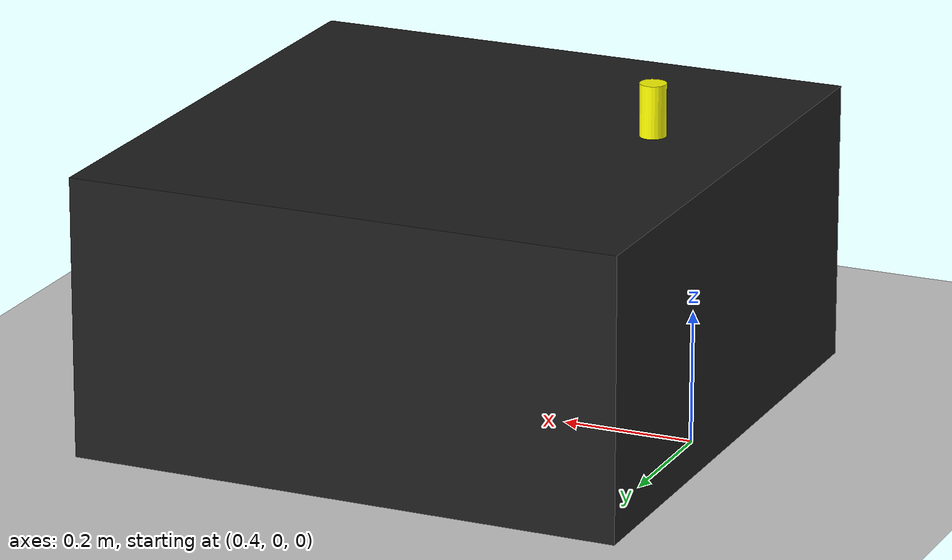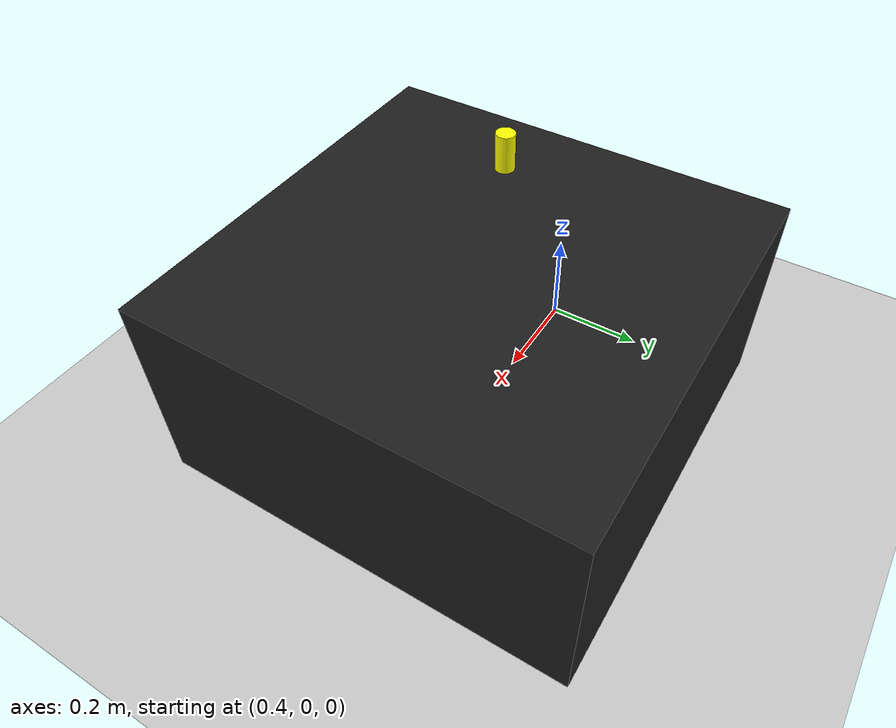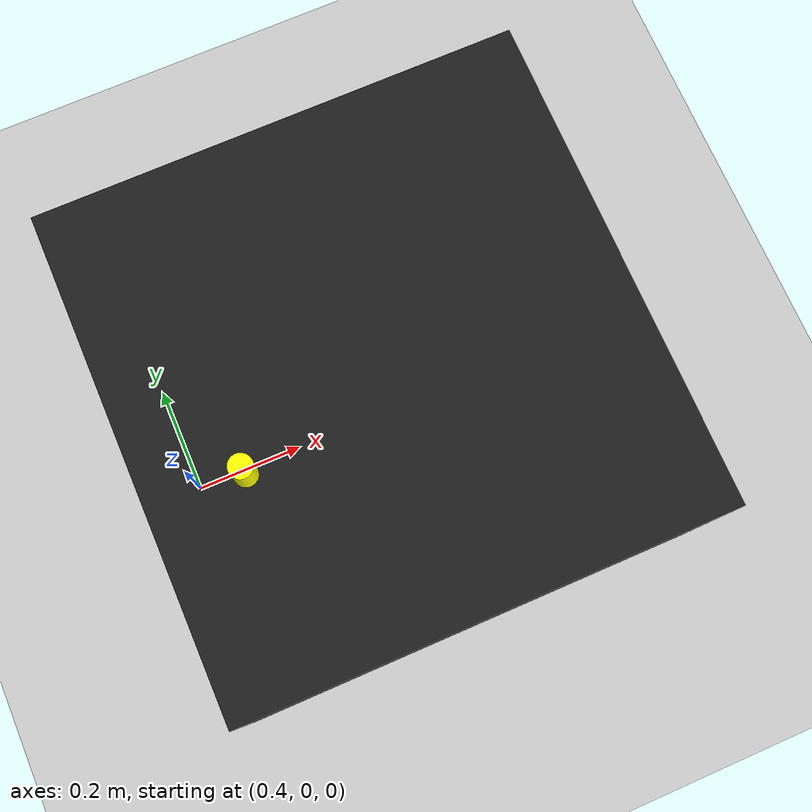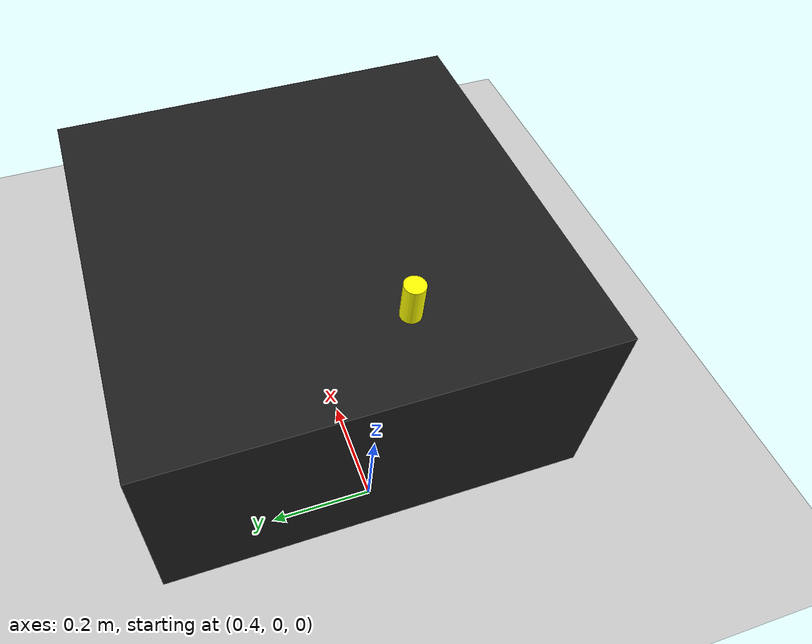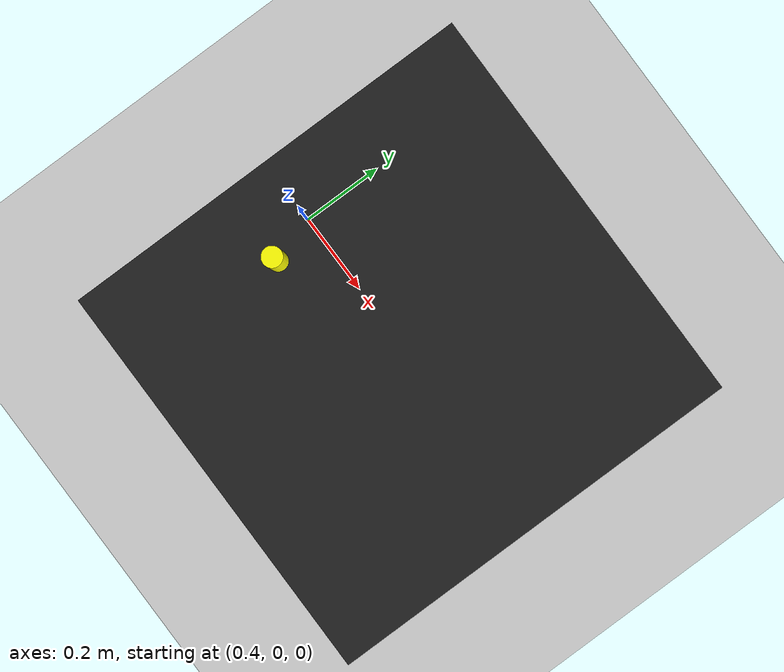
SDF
<sdf version="1.6">
 <world name="default">
  <light name="sun" type="directional">
   <pose>0 0 10 0 -0 0</pose>
   <diffuse>0.8 0.8 0.8 1</diffuse>
   <specular>0.2 0.2 0.2 1</specular>
   <attenuation>
    <range>1000</range>
    <constant>0.9</constant>
    <linear>0.01</linear>
    <quadratic>0.001</quadratic>
   </attenuation>
   <direction>-0.5 0.1 -0.9</direction>
  </light>
  <model name="ground_plane">
   <static>1</static>
   <link name="link">
    <collision name="collision">
     <geometry><plane><normal>0 0 1</normal><size>100 100</size></plane></geometry>
     <surface><friction><ode><mu>100</mu><mu2>50</mu2></ode></friction></surface>
    </collision>
    <visual name="visual">
     <cast_shadows>0</cast_shadows>
     <geometry><plane><normal>0 0 1</normal><size>100 100</size></plane></geometry>
     <material>
      <script><uri>file://media/materials/scripts/gazebo.material</uri><name>Gazebo/Grey</name></script>
     </material>
    </visual>
   </link>
  </model>
  <gravity>0 0 -9.8</gravity>
  <magnetic_field>6e-06 2.3e-05 -4.2e-05</magnetic_field>
  <atmosphere type="adiabatic"/>
  <physics name="default_physics" default="0" type="ode">
   <max_step_size>0.001</max_step_size>
   <real_time_factor>1</real_time_factor>
   <real_time_update_rate>1000</real_time_update_rate>
  </physics>
  <scene><ambient>0.4 0.4 0.4 1</ambient><background>0.7 0.7 0.7 1</background><shadows>1</shadows></scene>
  <spherical_coordinates>
   <surface_model>EARTH_WGS84</surface_model>
   <latitude_deg>0</latitude_deg>
   <longitude_deg>0</longitude_deg>
   <elevation>0</elevation>
   <heading_deg>0</heading_deg>
  </spherical_coordinates>
  <model name="unit_box">
   <link name="link">
    <inertial>
     <mass>1</mass>
     <inertia>
      <ixx>0.166667</ixx>
      <ixy>0</ixy>
      <ixz>0</ixz>
      <iyy>0.166667</iyy>
      <iyz>0</iyz>
      <izz>0.166667</izz>
     </inertia>
    </inertial>
    <visual name="visual">
     <geometry><box><size>0.841749 0.863467 0.422974</size></box></geometry>
     <material>
      <script><name>Gazebo/Black</name><uri>file://media/materials/scripts/gazebo.material</uri></script>
      <shader type="pixel"><normal_map>__default__</normal_map></shader>
      <ambient>0 0 0 1</ambient>
      <diffuse>0 0 0 1</diffuse>
      <specular>0.1 0.1 0.1 1</specular>
      <emissive>0 0 0 1</emissive>
     </material>
    </visual>
    <collision name="collision">
     <geometry><box><size>0.841749 0.863467 0.422974</size></box></geometry>
     <surface>
      <friction>
       <ode><mu>1</mu><mu2>1</mu2><fdir1>0 0 0</fdir1><slip1>0</slip1><slip2>0</slip2></ode>
       <torsional>
        <coefficient>1</coefficient>
        <patch_radius>0</patch_radius>
        <surface_radius>0</surface_radius>
        <use_patch_radius>1</use_patch_radius>
        <ode><slip>0</slip></ode>
       </torsional>
      </friction>
      <bounce><restitution_coefficient>0</restitution_coefficient><threshold>1e+06</threshold></bounce>
      <contact>
       <collide_without_contact>0</collide_without_contact>
       <collide_without_contact_bitmask>1</collide_without_contact_bitmask>
       <collide_bitmask>1</collide_bitmask>
       <ode>
        <soft_cfm>0</soft_cfm>
        <soft_erp>0.2</soft_erp>
        <kp>1e+13</kp>
        <kd>1</kd>
        <max_vel>0.01</max_vel>
        <min_depth>0</min_depth>
       </ode>
       <bullet>
        <split_impulse>1</split_impulse>
        <split_impulse_penetration_threshold>-0.01</split_impulse_penetration_threshold>
        <soft_cfm>0</soft_cfm>
        <soft_erp>0.2</soft_erp>
        <kp>1e+13</kp>
        <kd>1</kd>
       </bullet>
      </contact>
     </surface>
    </collision>
   </link>
   <static>1</static>
   <pose>0.76127 0 0.216165 0 -0 0</pose>
  </model>
  <model name="box_yellow">
   <link name="blue_link">
    <inertial>
     <mass>0.5</mass>
     <inertia><ixx>0.0005</ixx><ixy>0</ixy><ixz>0</ixz><iyy>0.0005</iyy><iyz>0</iyz><izz>0.0005</izz></inertia>
    </inertial>
    <collision name="collision">
     <geometry><cylinder><radius>0.02</radius><length>0.08</length></cylinder></geometry>
     <surface>
      <friction><ode><mu>0.6</mu><mu2>0.6</mu2></ode></friction>
      <contact><ode><min_depth>0.001</min_depth><max_vel>0</max_vel></ode></contact>
     </surface>
    </collision>
    <visual name="visual">
     <geometry><cylinder><radius>0.02</radius><length>0.08</length></cylinder></geometry>
     <material>
      <ambient>1 1 0 1</ambient>
      <diffuse>1 1 0 1</diffuse>
      <specular>0 0 0 0</specular>
      <emissive>0 0 0 1</emissive>
     </material>
    </visual>
   </link>
   <pose>0.503161 -0.090063 0.467361 -2e-06 0 8e-06</pose>
  </model>
 </world>
</sdf>
